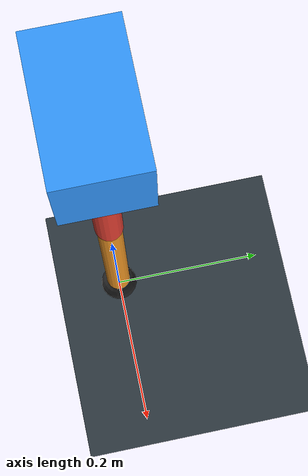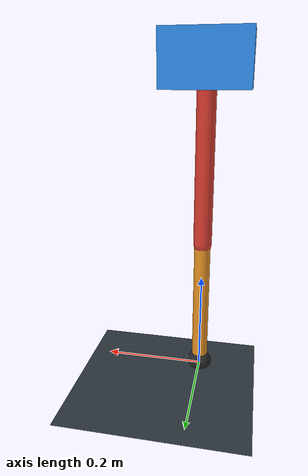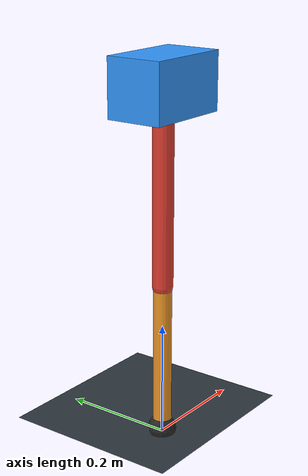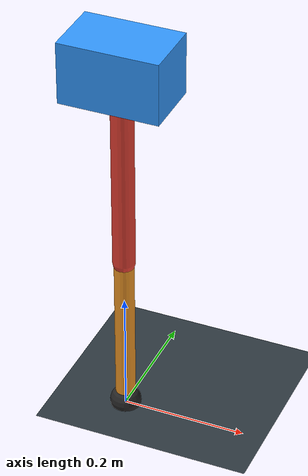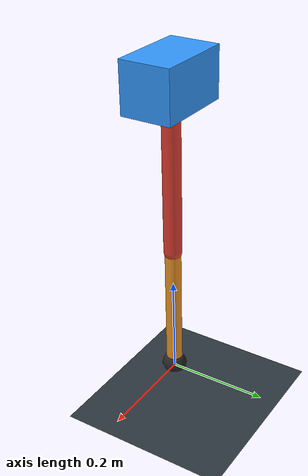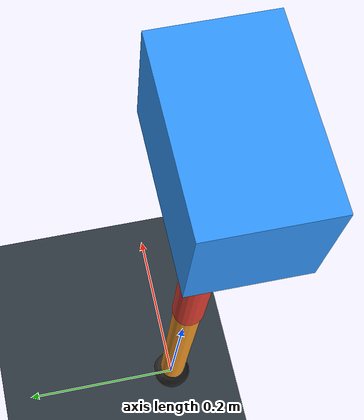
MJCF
<mujoco model="single_axis_two_bar">
  <compiler angle="radian" inertiafromgeom="true"/>
  <option timestep="0.001" integrator="implicitfast" gravity="0 0 -9.81"/>
  <default>
    <joint damping="0.08"/>
    <geom friction="1.2 0.01 0.0001" condim="3"/>
  </default>
  <worldbody>
    <geom name="floor" type="plane" size="5 5 0.1" rgba="0.18 0.22 0.25 1"/>
    <body name="carriage" pos="0 0 0.6162034021407765">
      <joint name="pole_slide" type="slide" axis="0 0 1"/>
      <geom name="payload" type="box" size="0.08 0.05 0.05" mass="2.3804480010462834" rgba="0.2 0.6 1 1"/>
      <body name="thigh" pos="0 0 0">
        <joint name="hip" type="hinge" axis="0 1 0"/>
        <geom name="thigh_link" type="capsule" fromto="0 0 0 0 0 -0.3424627529733378" size="0.018" mass="0.24400923673952868" rgba="0.9 0.25 0.2 1"/>
        <body name="shank" pos="0 0 -0.3424627529733378">
          <joint name="knee" type="hinge" axis="0 1 0"/>
          <geom name="shank_link" type="capsule" fromto="0 0 0 0 0 -0.2670252904707617" size="0.016" mass="0.19025904788832385" rgba="0.95 0.6 0.15 1"/>
          <geom name="foot" type="sphere" pos="0 0 -0.2670252904707617" size="0.025" mass="0.03" rgba="0.15 0.15 0.15 1"/>
          <site name="toe" pos="0 0 -0.2670252904707617" size="0.008"/>
        </body>
      </body>
    </body>
  </worldbody>
  <actuator>
    <motor name="hip_motor" joint="hip" ctrlrange="-36.97179184368786 36.97179184368786"/>
    <motor name="knee_motor" joint="knee" ctrlrange="-97.29504858683372 97.29504858683372"/>
  </actuator>
</mujoco>
